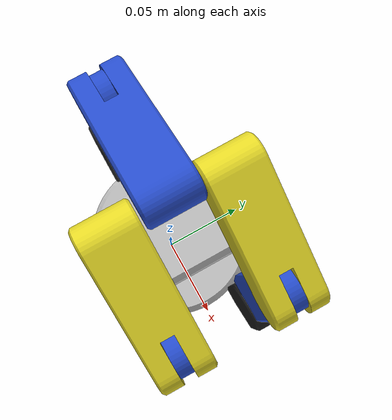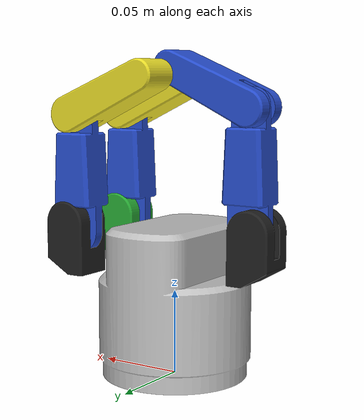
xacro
<?xml version="1.0"?>
<robot name="bhand" xmlns:xacro="http://www.ros.org/wiki/xacro">

  <!-- Import all Gazebo-customization elements, including Gazebo colors -->
  <xacro:include filename="$(find bh262_description)/urdf/bh.gazebo" />

  <!-- Constants for robot dimensions -->
  <xacro:property name="PI" value="3.1415926535897931"/>
  <xacro:property name="joint_damping" value="100.0" />
  <xacro:property name="joint_friction" value="1.0" />
  <xacro:property name="joint_effort_limit" value="30.0" />
  <xacro:property name="joint_velocity_limit" value="2.0" />
  <xacro:property name="mechanical_reduction" value="1.0" />

  <!-- Used for fixing robot to Gazebo 'base_link' -->
  <link name="world"/>
  <joint name="fwf" type="fixed">
    <parent link="world"/>
    <child link="base_footprint"/>
  </joint>

  <!-- BASE FOOTPRINT -->
  <!-- base_footprint is a fictitious link(frame) that is on the ground right below base_link origin,
             navigation stack depends on this frame -->
  <link name="base_footprint">
      <visual>
          <origin xyz="0 0 0" rpy="0 0 0" />
          <geometry>
             <box size="0.001 0.001 0.001" />
          </geometry>
      </visual>

      <collision>
          <origin xyz="0 0 0" rpy="0 0 0" />
          <geometry>
            <box size="0.001 0.001 0.001" />
         </geometry>
     </collision>
  </link>

  <!-- BASE_LINK (RED) -->
  <link name="base_link">
    <inertial>
      <mass value="1.0" />
      <origin xyz="0 0 0" />
      <inertia  ixx="1.0" ixy="0.0"  ixz="0.0"  iyy="1.0"  iyz="0.0"  izz="1.0" />
    </inertial>
    <visual>
       <origin xyz="0 0 0" rpy="0 0 0" />
       <geometry>
	      <mesh filename="package://bh262_description/meshes/bhand/palm.dae"/>
       </geometry>
       <material name="Grey">
          <color rgba="0.75 0.75 0.75 1.0"/>
       </material>
    </visual>
    <collision>
       <origin xyz="0 0 0" rpy="0 0 0 " />
       <geometry name="bh_palm_collision">
          <mesh filename="package://bh262_description/meshes/bhand/palm.dae"/>
       </geometry>
       <contact_coefficients kd="1.0" kp="1000.0" mu="0"/>
    </collision>
  </link>

  <joint name="base_footprint_joint" type="fixed">
     <origin xyz="0 0 0" rpy="0 0 0" />
     <parent link="base_footprint"/>
     <child link="base_link"/>
  </joint>

  <!-- BARRETT HAND -->
  <link name="bh_grasp_link"/>

  <!-- grasp link -->
  <joint name="bh_grasp_joint" type="fixed" >
	 <origin xyz="0 0 0.15" rpy="0 0 0"/>
	 <!-- parent link="bh_palm_link" / -->
	 <parent link="base_footprint" />
	 <child link="bh_grasp_link" />
  </joint>

  <!-- finger 31 link -->
  <link name="bh_finger_31_link">
     <inertial>
	   <mass value="0.1"/>
	   <origin xyz="-0.046 0 0" rpy="0 0 0"/>
       <inertia ixx="0.01" ixy="0" ixz="0" iyy="0.01" iyz="0" izz="0.01" />
	 </inertial>
	 <visual>
	   <origin xyz="-0.046 0 0" rpy="0 0 0" />
	   <geometry>
	      <mesh filename="package://bh262_description/meshes/bhand/knuckle.dae" />
	   </geometry>
	   <material name="Black"/>
     </visual>
	 <collision>
	   <origin xyz="-0.046 0 0" rpy="0 0 0" />
	   <geometry>
		  <mesh filename="package://bh262_description/meshes/bhand/knuckle.dae"/>
	   </geometry>
       <contact_coefficients kd="1.0" kp="1000.0" mu="0"/>
	  </collision>
  </link>

  <!-- joint between BH_palm_link and BH_finger_31_link -->
  <!-- finger3 is the center finger and is fixed -->
  <joint name="j31_joint" type="fixed">
    <parent link="base_link"/>
    <child link="bh_finger_31_link"/>
    <origin xyz="0 0 0.06" rpy="0 0 0"/>
  </joint>

  <!-- finger 32 link -->
  <link name="bh_finger_32_link">
     <inertial>
        <mass value="0.1"/>
	    <origin xyz="0 0 0" rpy="0 0 0"/>
	    <inertia ixx="0.01" ixy="0" ixz="0" iyy="0.01" iyz="0" izz="0.01" />
	 </inertial>
	 <visual>
		<origin xyz="0 0 0" rpy="0 0 0" />
		<geometry>
	      <mesh filename="package://bh262_description/meshes/bhand/finger.dae" />
		</geometry>
		<material name="Blue" />
	 </visual>
	 <collision>
		<origin xyz="0 0 0" rpy="0 0 0" />
		<geometry>
		  <mesh filename="package://bh262_description/meshes/bhand/finger.dae" />
		</geometry>
        <contact_coefficients kd="1.0" kp="1000.0" mu="0"/>
	 </collision>
  </link>

  <!-- joint between BH_finger_31_link and BH_finger_32_link -->
  <joint name="j32_joint" type="revolute">
    <parent link="bh_finger_31_link"/>
    <child link="bh_finger_32_link"/>
	<origin xyz="-0.050 0 0.030" rpy="0 0 0" />
    <axis xyz="0 1 0"/>
    <limit effort="${joint_effort_limit}" lower="-1.5708" upper="0.8727" velocity="${joint_velocity_limit}"/>
    <dynamics damping="${joint_damping}" friction="${joint_friction}"/>
  </joint>

  <transmission name="j32_transmission">
	<type>transmission_interface/SimpleTransmission</type>
    <joint name="j32_joint"/>
    <actuator name="j32">
	  <hardwareInterface>EffortJointInterface</hardwareInterface>
      <mechanicalReduction>1</mechanicalReduction>
      <motorTorqueConstant>1</motorTorqueConstant>
    </actuator>
  </transmission>

  <!-- finger 33 link -->
  <link name="bh_finger_33_link">
     <inertial>
        <mass value="0.1"/>
	    <origin xyz="0 0 0" rpy="0 0 0"/>
	    <inertia ixx="0.01" ixy="0" ixz="0" iyy="0.01" iyz="0" izz="0.01" />
	 </inertial>
	 <visual>
		<origin xyz="0 0 0" rpy="0 0 0" />
		<geometry>
	      <mesh filename="package://bh262_description/meshes/bhand/finger_tip.dae" />
		</geometry>
		<material name="Blue" />
	 </visual>
	 <collision>
		<origin xyz="0 0 0" rpy="0 0 0" />
		<geometry>
		  <mesh filename="package://bh262_description/meshes/bhand/finger_tip.dae" />
		</geometry>
        <contact_coefficients kd="1.0" kp="1000.0" mu="0"/>
	 </collision>
  </link>

  <!-- joint between BH_finger_32_link and BH_finger_33_link -->
  <joint name="j33_joint" type="revolute">
    <parent link="bh_finger_32_link"/>
    <child link="bh_finger_33_link"/>
	<origin xyz="0 0 0.07" rpy="0 0 1.57079633" />
    <axis xyz="1 0 0"/>
    <limit effort="${joint_effort_limit}" lower="0.7330" upper="1.5708" velocity="${joint_velocity_limit}"/>
    <dynamics damping="${joint_damping}" friction="${joint_friction}"/>
  </joint>

  <transmission name="j33_transmission">
	<type>transmission_interface/SimpleTransmission</type>
    <joint name="j33_joint"/>
    <actuator name="j33">
	  <hardwareInterface>EffortJointInterface</hardwareInterface>
      <mechanicalReduction>1</mechanicalReduction>
      <motorTorqueConstant>1</motorTorqueConstant>
    </actuator>
  </transmission>

  <!-- finger 1 -->
  <!-- finger 11 link -->
  <link name="bh_finger_11_link">
    <inertial>
	  <mass value="0.1"/>
      <origin xyz="-0.046 0 0" rpy="0 0 0"/>
	  <inertia ixx="0.01" ixy="0" ixz="0" iyy="0.01" iyz="0" izz="0.01" />
    </inertial>
    <visual>
      <origin xyz="-0.046 0 0" rpy="0 0 0" />
	  <geometry>
		 <mesh filename="package://bh262_description/meshes/bhand/knuckle.dae" />
	  </geometry>
      <material name="Green" />
    </visual>
    <collision>
      <origin xyz="-0.046 0 0" rpy="0 0 0" />
	  <geometry>
        <mesh filename="package://bh262_description/meshes/bhand/knuckle.dae" />
	  </geometry>
	</collision>
  </link>

  <!-- joint between BH_palm_link and BH_finger_11_link -->
  <joint name="j11_joint" type="revolute">
    <parent link="base_link"/>
    <child link="bh_finger_11_link"/>
    <origin xyz="0.0 -0.025 0.06" rpy="0 0 3.14"/>
    <axis xyz="0 0 1"/>
    <limit effort="${joint_effort_limit}" lower="-3.1416" upper="0" velocity="${joint_velocity_limit}"/>
    <dynamics damping="${joint_damping}" friction="${joint_friction}"/>
  </joint>

  <transmission name="j11_transmission">
	<type>transmission_interface/SimpleTransmission</type>
    <joint name="j11_joint"/>
    <actuator name="j11">
	  <hardwareInterface>EffortJointInterface</hardwareInterface>
      <mechanicalReduction>1</mechanicalReduction>
      <motorTorqueConstant>1</motorTorqueConstant>
    </actuator>
  </transmission>

  <!-- finger 12 link -->
  <link name="bh_finger_12_link">
    <inertial>
      <mass value="0.1"/>
      <origin xyz="0 0 0" rpy="0 0 0"/>
	  <inertia ixx="0.01" ixy="0" ixz="0" iyy="0.01" iyz="0" izz="0.01" />
	</inertial>
	<visual>
	  <origin xyz="0 0 0" rpy="0 0 0" />
      <geometry>
		 <mesh filename="package://bh262_description/meshes/bhand/finger.dae" />
	   </geometry>
	   <material name="Blue" />
	</visual>
	<collision>
	  <origin xyz="0 0 0" rpy="0 0 0" />
	  <geometry>
		 <mesh filename="package://bh262_description/meshes/bhand/finger.dae" />
	  </geometry>
	</collision>
  </link>

  <!-- joint between BH_finger_11_link and BH_finger_12_link -->
  <joint name="j12_joint" type="revolute">
    <parent link="bh_finger_11_link"/>
    <child link="bh_finger_12_link"/>
    <origin xyz="-0.050 0 0.025" rpy="0 0 0"/>
    <axis xyz="0 1 0"/>
    <limit effort="${joint_effort_limit}" lower="-1.5708" upper="0.8727" velocity="${joint_velocity_limit}"/>
    <dynamics damping="${joint_damping}" friction="${joint_friction}"/>
  </joint>

  <transmission name="j12_transmission">
	<type>transmission_interface/SimpleTransmission</type>
    <joint name="j12_joint"/>
    <actuator name="j12">
	  <hardwareInterface>EffortJointInterface</hardwareInterface>
      <mechanicalReduction>1</mechanicalReduction>
      <motorTorqueConstant>1</motorTorqueConstant>
    </actuator>
  </transmission>

  <!-- finger 13 link -->
  <link name="bh_finger_13_link">
    <inertial>
      <mass value="0.1"/>
      <origin xyz="0 0 0" rpy="0 0 0"/>
	  <inertia ixx="0.01" ixy="0" ixz="0" iyy="0.01" iyz="0" izz="0.01" />
	</inertial>
	<visual>
	  <origin xyz="0 0 0" rpy="0 0 0" />
      <geometry>
		 <mesh filename="package://bh262_description/meshes/bhand/finger_tip.dae" />
	   </geometry>
	   <material name="Yellow" />
	</visual>
	<collision>
	  <origin xyz="0 0 0" rpy="0 0 0" />
	  <geometry>
		 <mesh filename="package://bh262_description/meshes/bhand/finger_tip.dae" />
	  </geometry>
	</collision>
  </link>

  <!-- joint between BH_finger_12_link and BH_finger_13_link -->
  <joint name="j13_joint" type="revolute">
    <parent link="bh_finger_12_link"/>
    <child link="bh_finger_13_link"/>
	<origin xyz="0 0 0.070" rpy="0 0 1.57079633" />
	<axis xyz="1 0 0"/>
    <limit effort="${joint_effort_limit}" lower="0.7330" upper="1.5708" velocity="${joint_velocity_limit}"/>
    <dynamics damping="${joint_damping}" friction="${joint_friction}"/>
  </joint>

  <transmission name="j13_transmission">
	<type>transmission_interface/SimpleTransmission</type>
    <joint name="j13_joint"/>
    <actuator name="j13">
	  <hardwareInterface>EffortJointInterface</hardwareInterface>
      <mechanicalReduction>1</mechanicalReduction>
      <motorTorqueConstant>1</motorTorqueConstant>
    </actuator>
  </transmission>

  <!-- finger 2 -->
  <!-- finger 21 link -->
  <link name="bh_finger_21_link">
    <inertial>
	  <mass value="0.1"/>
      <origin xyz="-0.046 0 0" rpy="0 0 0"/>
	  <inertia ixx="0.01" ixy="0" ixz="0" iyy="0.01" iyz="0" izz="0.01" />
    </inertial>
	<visual>
      <origin xyz="-0.046 0 0" rpy="0 0 0" />
      <geometry>
		 <mesh filename="package://bh262_description/meshes/bhand/knuckle.dae" />
	  </geometry>
	  <material name="Black" />
	</visual>
	<collision>
	  <origin xyz="-0.046 0 0" rpy="0 0 0" />
	  <geometry>
	    <mesh filename="package://bh262_description/meshes/bhand/knuckle.dae" />
	  </geometry>
	</collision>
  </link>

  <!-- joint between BH_palm_link and BH_finger_21_link -->
  <joint name="j21_joint" type="revolute">
    <parent link="base_link"/>
    <child link="bh_finger_21_link"/>
    <origin xyz="0.0 0.025 0.06" rpy="0 0 3.14" />
    <axis xyz="0 0 1"/>
    <limit effort="${joint_effort_limit}" lower="0" upper="3.1416" velocity="${joint_velocity_limit}"/>
    <dynamics damping="${joint_damping}" friction="${joint_friction}"/>
  </joint>

  <transmission name="j21_transmission">
	<type>transmission_interface/SimpleTransmission</type>
    <joint name="j21_joint"/>
    <actuator name="j21">
	  <hardwareInterface>EffortJointInterface</hardwareInterface>
      <mechanicalReduction>1</mechanicalReduction>
      <motorTorqueConstant>1</motorTorqueConstant>
    </actuator>
  </transmission>

  <!-- finger 22 link -->
  <link name="bh_finger_22_link">
    <inertial>
	  <mass value="0.1"/>
      <origin xyz="0 0 0" rpy="0 0 0"/>
      <inertia ixx="0.01" ixy="0" ixz="0" iyy="0.01" iyz="0" izz="0.01" />
    </inertial>
    <visual>
      <origin xyz="0 0 0" rpy="0 0 0" />
	  <geometry>
	    <mesh filename="package://bh262_description/meshes/bhand/finger.dae"/>
	  </geometry>
	  <material name="Blue" />
    </visual>
	<collision>
      <origin xyz="0 0 0" rpy="0 0 0" />
	  <geometry>
        <mesh filename="package://bh262_description/meshes/bhand/finger.dae"/>
	  </geometry>
	</collision>
  </link>

  <!-- joint between BH_finger_21_link and BH_finger_22_link -->
  <joint name="j22_joint" type="revolute">
    <parent link="bh_finger_21_link"/>
    <child link="bh_finger_22_link"/>
    <origin xyz="-0.050 0 0.025" rpy="0 0 0" />
    <axis xyz="0 1 0"/>
    <limit effort="${joint_effort_limit}" lower="-1.5708" upper="0.8727" velocity="${joint_velocity_limit}"/>
    <dynamics damping="${joint_damping}" friction="${joint_friction}"/>
  </joint>

  <transmission name="j22_transmission">
	<type>transmission_interface/SimpleTransmission</type>
    <joint name="j22_joint"/>
    <actuator name="j22">
	  <hardwareInterface>EffortJointInterface</hardwareInterface>
      <mechanicalReduction>1</mechanicalReduction>
      <motorTorqueConstant>1</motorTorqueConstant>
    </actuator>
  </transmission>

  <!-- finger23 link -->
  <link name="bh_finger_23_link">
     <inertial>
	    <origin xyz="0 0 0" rpy="0 0 0"/>
		<mass value="0.1"/>
		<inertia ixx="0.01" ixy="0" ixz="0" iyy="0.01" iyz="0" izz="0.01" />
	 </inertial>
	 <visual>
		<origin xyz="0 0 0" rpy="0 0 0" />
		<geometry>
		  <mesh filename="package://bh262_description/meshes/bhand/finger_tip.dae" />
	    </geometry>
		<material name="Yellow" />
	 </visual>
	 <collision>
       <origin xyz="0 0 0" rpy="0 0 0" />
       <geometry>
         <mesh filename="package://bh262_description/meshes/bhand/finger_tip.dae"/>
	   </geometry>
	 </collision>
  </link>

  <!-- joint between BH_finger_22_link and BH_finger_23_link -->
  <joint name="j23_joint" type="revolute">
    <parent link="bh_finger_22_link"/>
    <child link="bh_finger_23_link"/>
	<origin xyz="0 0 0.070" rpy="0 0 1.57079633" />
	<axis xyz="1 0 0"/>
    <limit effort="${joint_effort_limit}" lower="0.7330" upper="1.5708" velocity="${joint_velocity_limit}"/>
    <dynamics damping="${joint_damping}" friction="${joint_friction}"/>
  </joint>

  <transmission name="j23_transmission">
	<type>transmission_interface/SimpleTransmission</type>
    <joint name="j23_joint"/>
    <actuator name="j23">
	  <hardwareInterface>EffortJointInterface</hardwareInterface>
      <mechanicalReduction>1</mechanicalReduction>
      <motorTorqueConstant>1</motorTorqueConstant>
    </actuator>
  </transmission>

</robot>
